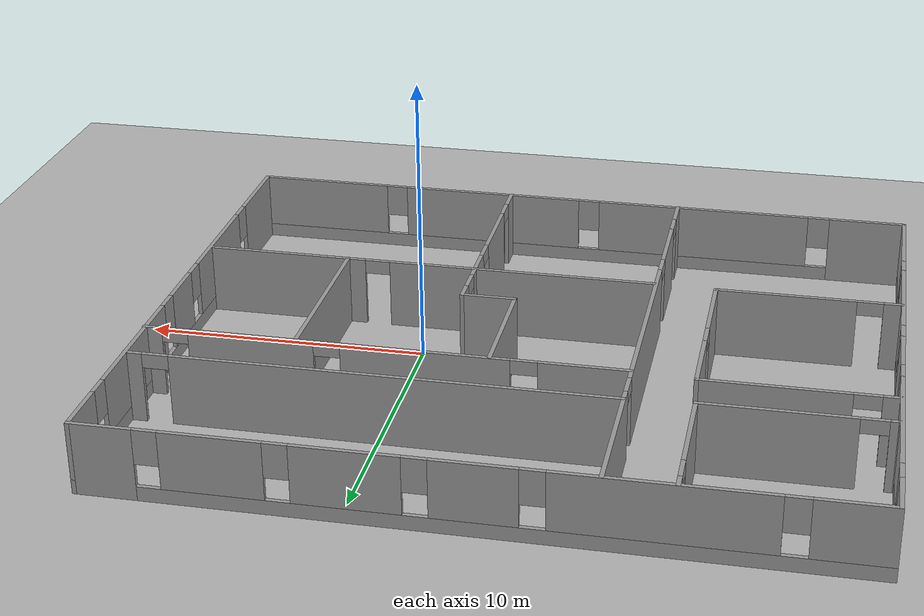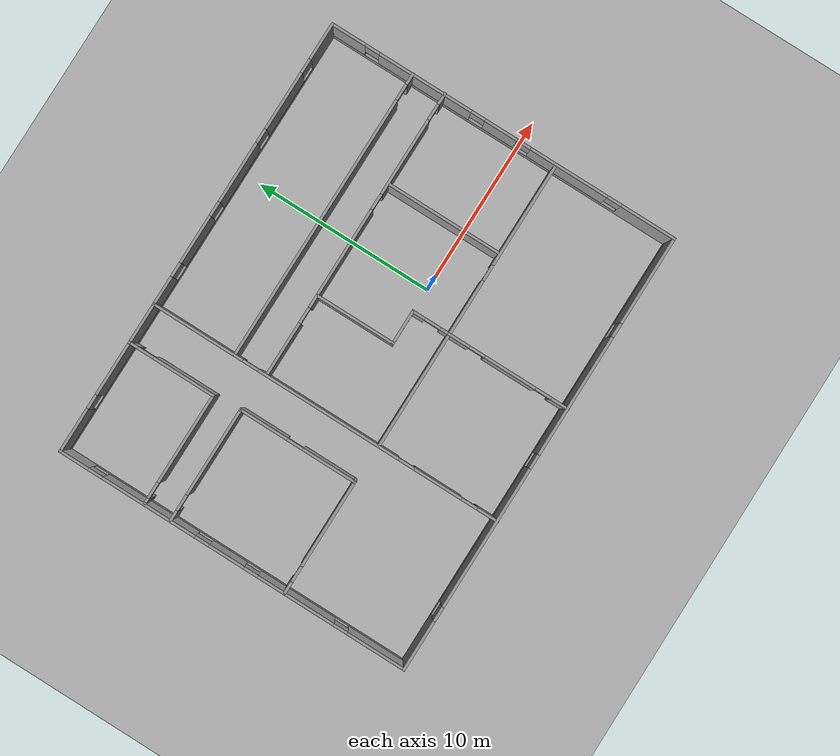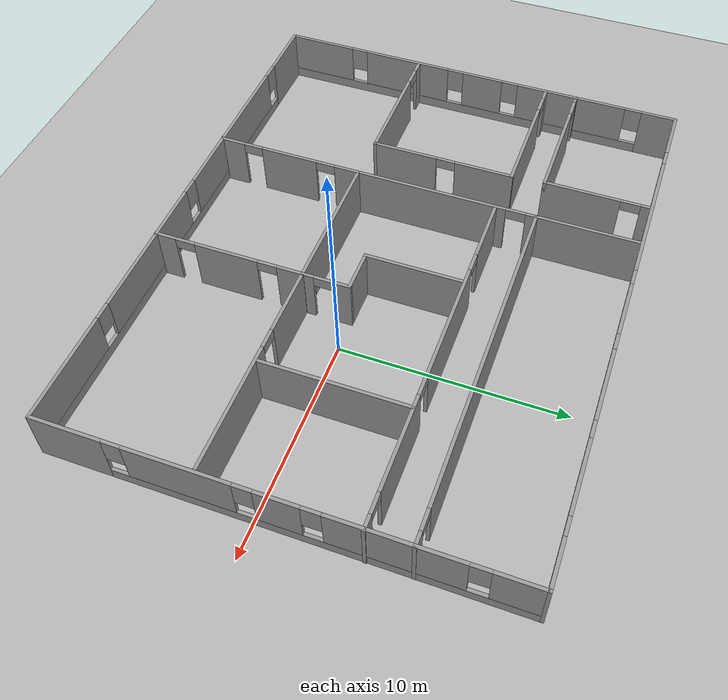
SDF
<sdf version="1.10">
 <world name="default">
  <model name="ground_plane">
   <static>true</static>
   <link name="link">
    <collision name="collision">
     <geometry><plane><normal>0 0 1</normal><size>100 100</size></plane></geometry>
     <surface><friction><ode><mu>100</mu><mu2>50</mu2></ode></friction></surface>
    </collision>
    <visual name="visual">
     <cast_shadows>false</cast_shadows>
     <geometry><plane><normal>0 0 1</normal><size>100 100</size></plane></geometry>
     <material>
      <ambient>0.300000012 0.300000012 0.300000012 1</ambient>
      <diffuse>0.699999988 0.699999988 0.699999988 1</diffuse>
      <specular>0.00999999978 0.00999999978 0.00999999978 1</specular>
     </material>
    </visual>
    <inertial>
     <mass>1</mass>
     <inertia><ixx>1</ixx><ixy>0</ixy><ixz>0</ixz><iyy>1</iyy><iyz>0</iyz><izz>1</izz></inertia>
    </inertial>
   </link>
  </model>
  <model name="RoomWorld">
   <pose>-4 1 0 0 0 0</pose>
   <link name="Wall_12">
    <pose>-0.015924000000000001 -9.9163999999999994 0 0 0 0</pose>
    <visual name="Wall_12_Visual_0">
     <pose>-11.0832 0 1.25 0 0 0</pose>
     <geometry><box><size>2.83352 0.14999999999999999 2.5</size></box></geometry>
     <material>
      <script><uri>file://media/materials/scripts/gazebo.material</uri><name>Gazebo/Grey</name></script>
      <ambient>1 1 1 1</ambient>
     </material>
    </visual>
    <collision name="Wall_12_Collision_0">
     <geometry><box><size>2.83352 0.14999999999999999 2.5</size></box></geometry>
     <pose>-11.0832 0 1.25 0 0 0</pose>
    </collision>
    <visual name="Wall_12_Visual_1">
     <pose>1.41676 0 0.25 0 0 0</pose>
     <geometry><box><size>22.166499999999999 0.14999999999999999 0.5</size></box></geometry>
     <material>
      <script><uri>file://media/materials/scripts/gazebo.material</uri><name>Gazebo/Grey</name></script>
      <ambient>1 1 1 1</ambient>
     </material>
    </visual>
    <collision name="Wall_12_Collision_1">
     <geometry><box><size>22.166499999999999 0.14999999999999999 0.5</size></box></geometry>
     <pose>1.41676 0 0.25 0 0 0</pose>
    </collision>
    <visual name="Wall_12_Visual_2">
     <pose>-4.8832300000000002 0 1.5 0 0 0</pose>
     <geometry><box><size>7.9664999999999999 0.14999999999999999 2</size></box></geometry>
     <material>
      <script><uri>file://media/materials/scripts/gazebo.material</uri><name>Gazebo/Grey</name></script>
      <ambient>1 1 1 1</ambient>
     </material>
    </visual>
    <collision name="Wall_12_Collision_2">
     <geometry><box><size>7.9664999999999999 0.14999999999999999 2</size></box></geometry>
     <pose>-4.8832300000000002 0 1.5 0 0 0</pose>
    </collision>
    <visual name="Wall_12_Visual_3">
     <pose>3.3050099999999998 0 1.5 0 0 0</pose>
     <geometry><box><size>6.8099699999999999 0.14999999999999999 2</size></box></geometry>
     <material>
      <script><uri>file://media/materials/scripts/gazebo.material</uri><name>Gazebo/Grey</name></script>
      <ambient>1 1 1 1</ambient>
     </material>
    </visual>
    <collision name="Wall_12_Collision_3">
     <geometry><box><size>6.8099699999999999 0.14999999999999999 2</size></box></geometry>
     <pose>3.3050099999999998 0 1.5 0 0 0</pose>
    </collision>
    <visual name="Wall_12_Visual_4">
     <pose>10.005000000000001 0 1.5 0 0 0</pose>
     <geometry><box><size>4.9900099999999998 0.14999999999999999 2</size></box></geometry>
     <material>
      <script><uri>file://media/materials/scripts/gazebo.material</uri><name>Gazebo/Grey</name></script>
      <ambient>1 1 1 1</ambient>
     </material>
    </visual>
    <collision name="Wall_12_Collision_4">
     <geometry><box><size>4.9900099999999998 0.14999999999999999 2</size></box></geometry>
     <pose>10.005000000000001 0 1.5 0 0 0</pose>
    </collision>
    <visual name="Wall_12_Visual_5">
     <pose>-9.2664799999999996 0 1.8999999999999999 0 0 0</pose>
     <geometry><box><size>0.80000000000000004 0.14999999999999999 1.2</size></box></geometry>
     <material>
      <script><uri>file://media/materials/scripts/gazebo.material</uri><name>Gazebo/Grey</name></script>
      <ambient>1 1 1 1</ambient>
     </material>
    </visual>
    <collision name="Wall_12_Collision_5">
     <geometry><box><size>0.80000000000000004 0.14999999999999999 1.2</size></box></geometry>
     <pose>-9.2664799999999996 0 1.8999999999999999 0 0 0</pose>
    </collision>
    <visual name="Wall_12_Visual_6">
     <pose>-0.49997799999999998 0 1.8999999999999999 0 0 0</pose>
     <geometry><box><size>0.80000000000000004 0.14999999999999999 1.2</size></box></geometry>
     <material>
      <script><uri>file://media/materials/scripts/gazebo.material</uri><name>Gazebo/Grey</name></script>
      <ambient>1 1 1 1</ambient>
     </material>
    </visual>
    <collision name="Wall_12_Collision_6">
     <geometry><box><size>0.80000000000000004 0.14999999999999999 1.2</size></box></geometry>
     <pose>-0.49997799999999998 0 1.8999999999999999 0 0 0</pose>
    </collision>
    <visual name="Wall_12_Visual_7">
     <pose>7.1099899999999998 0 1.8999999999999999 0 0 0</pose>
     <geometry><box><size>0.80000000000000004 0.14999999999999999 1.2</size></box></geometry>
     <material>
      <script><uri>file://media/materials/scripts/gazebo.material</uri><name>Gazebo/Grey</name></script>
      <ambient>1 1 1 1</ambient>
     </material>
    </visual>
    <collision name="Wall_12_Collision_7">
     <geometry><box><size>0.80000000000000004 0.14999999999999999 1.2</size></box></geometry>
     <pose>7.1099899999999998 0 1.8999999999999999 0 0 0</pose>
    </collision>
    <velocity_decay><linear>0</linear><angular>0</angular></velocity_decay>
    <inertial>
     <mass>1</mass>
     <inertia><ixx>1</ixx><ixy>0</ixy><ixz>0</ixz><iyy>1</iyy><iyz>0</iyz><izz>1</izz></inertia>
    </inertial>
   </link>
   <link name="Wall_13">
    <pose>12.4091 0.008604000000000056 0 0 0 1.5708000000000011</pose>
    <visual name="Wall_13_Visual_0">
     <pose>-8.4323200000000007 0 1.25 0 0 0</pose>
     <geometry><box><size>3.1353599999999999 0.14999999999999999 2.5</size></box></geometry>
     <material>
      <script><uri>file://media/materials/scripts/gazebo.material</uri><name>Gazebo/Grey</name></script>
      <ambient>1 1 1 1</ambient>
     </material>
    </visual>
    <collision name="Wall_13_Collision_0">
     <geometry><box><size>3.1353599999999999 0.14999999999999999 2.5</size></box></geometry>
     <pose>-8.4323200000000007 0 1.25 0 0 0</pose>
    </collision>
    <visual name="Wall_13_Visual_1">
     <pose>1.56768 0 0.25 0 0 0</pose>
     <geometry><box><size>16.864599999999999 0.14999999999999999 0.5</size></box></geometry>
     <material>
      <script><uri>file://media/materials/scripts/gazebo.material</uri><name>Gazebo/Grey</name></script>
      <ambient>1 1 1 1</ambient>
     </material>
    </visual>
    <collision name="Wall_13_Collision_1">
     <geometry><box><size>16.864599999999999 0.14999999999999999 0.5</size></box></geometry>
     <pose>1.56768 0 0.25 0 0 0</pose>
    </collision>
    <visual name="Wall_13_Visual_2">
     <pose>-3.8393199999999998 0 1.5 0 0 0</pose>
     <geometry><box><size>4.4506500000000004 0.14999999999999999 2</size></box></geometry>
     <material>
      <script><uri>file://media/materials/scripts/gazebo.material</uri><name>Gazebo/Grey</name></script>
      <ambient>1 1 1 1</ambient>
     </material>
    </visual>
    <collision name="Wall_13_Collision_2">
     <geometry><box><size>4.4506500000000004 0.14999999999999999 2</size></box></geometry>
     <pose>-3.8393199999999998 0 1.5 0 0 0</pose>
    </collision>
    <visual name="Wall_13_Visual_3">
     <pose>0.104448 0 1.5 0 0 0</pose>
     <geometry><box><size>1.8368899999999999 0.14999999999999999 2</size></box></geometry>
     <material>
      <script><uri>file://media/materials/scripts/gazebo.material</uri><name>Gazebo/Grey</name></script>
      <ambient>1 1 1 1</ambient>
     </material>
    </visual>
    <collision name="Wall_13_Collision_3">
     <geometry><box><size>1.8368899999999999 0.14999999999999999 2</size></box></geometry>
     <pose>0.104448 0 1.5 0 0 0</pose>
    </collision>
    <visual name="Wall_13_Visual_4">
     <pose>4.4992599999999996 0 1.5 0 0 0</pose>
     <geometry><box><size>5.3527399999999998 0.14999999999999999 2</size></box></geometry>
     <material>
      <script><uri>file://media/materials/scripts/gazebo.material</uri><name>Gazebo/Grey</name></script>
      <ambient>1 1 1 1</ambient>
     </material>
    </visual>
    <collision name="Wall_13_Collision_4">
     <geometry><box><size>5.3527399999999998 0.14999999999999999 2</size></box></geometry>
     <pose>4.4992599999999996 0 1.5 0 0 0</pose>
    </collision>
    <visual name="Wall_13_Visual_5">
     <pose>8.9878199999999993 0 1.5 0 0 0</pose>
     <geometry><box><size>2.0243699999999998 0.14999999999999999 2</size></box></geometry>
     <material>
      <script><uri>file://media/materials/scripts/gazebo.material</uri><name>Gazebo/Grey</name></script>
      <ambient>1 1 1 1</ambient>
     </material>
    </visual>
    <collision name="Wall_13_Collision_5">
     <geometry><box><size>2.0243699999999998 0.14999999999999999 2</size></box></geometry>
     <pose>8.9878199999999993 0 1.5 0 0 0</pose>
    </collision>
    <visual name="Wall_13_Visual_6">
     <pose>-6.4646400000000002 0 1.8999999999999999 0 0 0</pose>
     <geometry><box><size>0.80000000000000004 0.14999999999999999 1.2</size></box></geometry>
     <material>
      <script><uri>file://media/materials/scripts/gazebo.material</uri><name>Gazebo/Grey</name></script>
      <ambient>1 1 1 1</ambient>
     </material>
    </visual>
    <collision name="Wall_13_Collision_6">
     <geometry><box><size>0.80000000000000004 0.14999999999999999 1.2</size></box></geometry>
     <pose>-6.4646400000000002 0 1.8999999999999999 0 0 0</pose>
    </collision>
    <visual name="Wall_13_Visual_7">
     <pose>-1.214 0 1.8999999999999999 0 0 0</pose>
     <geometry><box><size>0.80000000000000004 0.14999999999999999 1.2</size></box></geometry>
     <material>
      <script><uri>file://media/materials/scripts/gazebo.material</uri><name>Gazebo/Grey</name></script>
      <ambient>1 1 1 1</ambient>
     </material>
    </visual>
    <collision name="Wall_13_Collision_7">
     <geometry><box><size>0.80000000000000004 0.14999999999999999 1.2</size></box></geometry>
     <pose>-1.214 0 1.8999999999999999 0 0 0</pose>
    </collision>
    <visual name="Wall_13_Visual_8">
     <pose>1.42289 0 1.8999999999999999 0 0 0</pose>
     <geometry><box><size>0.80000000000000004 0.14999999999999999 1.2</size></box></geometry>
     <material>
      <script><uri>file://media/materials/scripts/gazebo.material</uri><name>Gazebo/Grey</name></script>
      <ambient>1 1 1 1</ambient>
     </material>
    </visual>
    <collision name="Wall_13_Collision_8">
     <geometry><box><size>0.80000000000000004 0.14999999999999999 1.2</size></box></geometry>
     <pose>1.42289 0 1.8999999999999999 0 0 0</pose>
    </collision>
    <visual name="Wall_13_Visual_9">
     <pose>7.5756300000000003 0 1.8999999999999999 0 0 0</pose>
     <geometry><box><size>0.80000000000000004 0.14999999999999999 1.2</size></box></geometry>
     <material>
      <script><uri>file://media/materials/scripts/gazebo.material</uri><name>Gazebo/Grey</name></script>
      <ambient>1 1 1 1</ambient>
     </material>
    </visual>
    <collision name="Wall_13_Collision_9">
     <geometry><box><size>0.80000000000000004 0.14999999999999999 1.2</size></box></geometry>
     <pose>7.5756300000000003 0 1.8999999999999999 0 0 0</pose>
    </collision>
    <velocity_decay><linear>0</linear><angular>0</angular></velocity_decay>
    <inertial>
     <mass>1</mass>
     <inertia><ixx>1</ixx><ixy>0</ixy><ixz>0</ixz><iyy>1</iyy><iyz>0</iyz><izz>1</izz></inertia>
    </inertial>
   </link>
   <link name="Wall_14">
    <pose>-0.015924000000000049 9.9336000000000002 0 0 0 3.1415899999999999</pose>
    <visual name="Wall_14_Visual_0">
     <pose>-11.4391 0 1.25 0 0 0</pose>
     <geometry><box><size>2.12181 0.14999999999999999 2.5</size></box></geometry>
     <material>
      <script><uri>file://media/materials/scripts/gazebo.material</uri><name>Gazebo/Grey</name></script>
      <ambient>1 1 1 1</ambient>
     </material>
    </visual>
    <collision name="Wall_14_Collision_0">
     <geometry><box><size>2.12181 0.14999999999999999 2.5</size></box></geometry>
     <pose>-11.4391 0 1.25 0 0 0</pose>
    </collision>
    <visual name="Wall_14_Visual_1">
     <pose>1.06091 0 0.25 0 0 0</pose>
     <geometry><box><size>22.8782 0.14999999999999999 0.5</size></box></geometry>
     <material>
      <script><uri>file://media/materials/scripts/gazebo.material</uri><name>Gazebo/Grey</name></script>
      <ambient>1 1 1 1</ambient>
     </material>
    </visual>
    <collision name="Wall_14_Collision_1">
     <geometry><box><size>22.8782 0.14999999999999999 0.5</size></box></geometry>
     <pose>1.06091 0 0.25 0 0 0</pose>
    </collision>
    <visual name="Wall_14_Visual_2">
     <pose>-7.9311299999999996 0 1.5 0 0 0</pose>
     <geometry><box><size>3.2941199999999999 0.14999999999999999 2</size></box></geometry>
     <material>
      <script><uri>file://media/materials/scripts/gazebo.material</uri><name>Gazebo/Grey</name></script>
      <ambient>1 1 1 1</ambient>
     </material>
    </visual>
    <collision name="Wall_14_Collision_2">
     <geometry><box><size>3.2941199999999999 0.14999999999999999 2</size></box></geometry>
     <pose>-7.9311299999999996 0 1.5 0 0 0</pose>
    </collision>
    <visual name="Wall_14_Visual_3">
     <pose>-3.7560500000000001 0 1.5 0 0 0</pose>
     <geometry><box><size>3.4560300000000002 0.14999999999999999 2</size></box></geometry>
     <material>
      <script><uri>file://media/materials/scripts/gazebo.material</uri><name>Gazebo/Grey</name></script>
      <ambient>1 1 1 1</ambient>
     </material>
    </visual>
    <collision name="Wall_14_Collision_3">
     <geometry><box><size>3.4560300000000002 0.14999999999999999 2</size></box></geometry>
     <pose>-3.7560500000000001 0 1.5 0 0 0</pose>
    </collision>
    <visual name="Wall_14_Visual_4">
     <pose>0.141454 0 1.5 0 0 0</pose>
     <geometry><box><size>2.7389800000000002 0.14999999999999999 2</size></box></geometry>
     <material>
      <script><uri>file://media/materials/scripts/gazebo.material</uri><name>Gazebo/Grey</name></script>
      <ambient>1 1 1 1</ambient>
     </material>
    </visual>
    <collision name="Wall_14_Collision_4">
     <geometry><box><size>2.7389800000000002 0.14999999999999999 2</size></box></geometry>
     <pose>0.141454 0 1.5 0 0 0</pose>
    </collision>
    <visual name="Wall_14_Visual_5">
     <pose>5.7390600000000003 0 1.5 0 0 0</pose>
     <geometry><box><size>6.85623 0.14999999999999999 2</size></box></geometry>
     <material>
      <script><uri>file://media/materials/scripts/gazebo.material</uri><name>Gazebo/Grey</name></script>
      <ambient>1 1 1 1</ambient>
     </material>
    </visual>
    <collision name="Wall_14_Collision_5">
     <geometry><box><size>6.85623 0.14999999999999999 2</size></box></geometry>
     <pose>5.7390600000000003 0 1.5 0 0 0</pose>
    </collision>
    <visual name="Wall_14_Visual_6">
     <pose>11.233599999999999 0 1.5 0 0 0</pose>
     <geometry><box><size>2.5328200000000001 0.14999999999999999 2</size></box></geometry>
     <material>
      <script><uri>file://media/materials/scripts/gazebo.material</uri><name>Gazebo/Grey</name></script>
      <ambient>1 1 1 1</ambient>
     </material>
    </visual>
    <collision name="Wall_14_Collision_6">
     <geometry><box><size>2.5328200000000001 0.14999999999999999 2</size></box></geometry>
     <pose>11.233599999999999 0 1.5 0 0 0</pose>
    </collision>
    <visual name="Wall_14_Visual_7">
     <pose>-9.9781899999999997 0 1.8999999999999999 0 0 0</pose>
     <geometry><box><size>0.80000000000000004 0.14999999999999999 1.2</size></box></geometry>
     <material>
      <script><uri>file://media/materials/scripts/gazebo.material</uri><name>Gazebo/Grey</name></script>
      <ambient>1 1 1 1</ambient>
     </material>
    </visual>
    <collision name="Wall_14_Collision_7">
     <geometry><box><size>0.80000000000000004 0.14999999999999999 1.2</size></box></geometry>
     <pose>-9.9781899999999997 0 1.8999999999999999 0 0 0</pose>
    </collision>
    <visual name="Wall_14_Visual_8">
     <pose>-5.8840700000000004 0 1.8999999999999999 0 0 0</pose>
     <geometry><box><size>0.80000000000000004 0.14999999999999999 1.2</size></box></geometry>
     <material>
      <script><uri>file://media/materials/scripts/gazebo.material</uri><name>Gazebo/Grey</name></script>
      <ambient>1 1 1 1</ambient>
     </material>
    </visual>
    <collision name="Wall_14_Collision_8">
     <geometry><box><size>0.80000000000000004 0.14999999999999999 1.2</size></box></geometry>
     <pose>-5.8840700000000004 0 1.8999999999999999 0 0 0</pose>
    </collision>
    <visual name="Wall_14_Visual_9">
     <pose>-1.6280399999999999 0 1.8999999999999999 0 0 0</pose>
     <geometry><box><size>0.80000000000000004 0.14999999999999999 1.2</size></box></geometry>
     <material>
      <script><uri>file://media/materials/scripts/gazebo.material</uri><name>Gazebo/Grey</name></script>
      <ambient>1 1 1 1</ambient>
     </material>
    </visual>
    <collision name="Wall_14_Collision_9">
     <geometry><box><size>0.80000000000000004 0.14999999999999999 1.2</size></box></geometry>
     <pose>-1.6280399999999999 0 1.8999999999999999 0 0 0</pose>
    </collision>
    <visual name="Wall_14_Visual_10">
     <pose>1.9109400000000001 0 1.8999999999999999 0 0 0</pose>
     <geometry><box><size>0.80000000000000004 0.14999999999999999 1.2</size></box></geometry>
     <material>
      <script><uri>file://media/materials/scripts/gazebo.material</uri><name>Gazebo/Grey</name></script>
      <ambient>1 1 1 1</ambient>
     </material>
    </visual>
    <collision name="Wall_14_Collision_10">
     <geometry><box><size>0.80000000000000004 0.14999999999999999 1.2</size></box></geometry>
     <pose>1.9109400000000001 0 1.8999999999999999 0 0 0</pose>
    </collision>
    <visual name="Wall_14_Visual_11">
     <pose>9.5671800000000005 0 1.8999999999999999 0 0 0</pose>
     <geometry><box><size>0.80000000000000004 0.14999999999999999 1.2</size></box></geometry>
     <material>
      <script><uri>file://media/materials/scripts/gazebo.material</uri><name>Gazebo/Grey</name></script>
      <ambient>1 1 1 1</ambient>
     </material>
    </visual>
    <collision name="Wall_14_Collision_11">
     <geometry><box><size>0.80000000000000004 0.14999999999999999 1.2</size></box></geometry>
     <pose>9.5671800000000005 0 1.8999999999999999 0 0 0</pose>
    </collision>
    <velocity_decay><linear>0</linear><angular>0</angular></velocity_decay>
    <inertial>
     <mass>1</mass>
     <inertia><ixx>1</ixx><ixy>0</ixy><ixz>0</ixz><iyy>1</iyy><iyz>0</iyz><izz>1</izz></inertia>
    </inertial>
   </link>
   <link name="Wall_15">
    <pose>-12.440899999999999 0.008604000000000056 0 0 0 -1.5708000000000011</pose>
    <visual name="Wall_15_Visual_0">
     <pose>-9.1497299999999999 0 1.25 0 0 0</pose>
     <geometry><box><size>1.7005399999999999 0.14999999999999999 2.5</size></box></geometry>
     <material>
      <script><uri>file://media/materials/scripts/gazebo.material</uri><name>Gazebo/Grey</name></script>
      <ambient>1 1 1 1</ambient>
     </material>
    </visual>
    <collision name="Wall_15_Collision_0">
     <geometry><box><size>1.7005399999999999 0.14999999999999999 2.5</size></box></geometry>
     <pose>-9.1497299999999999 0 1.25 0 0 0</pose>
    </collision>
    <visual name="Wall_15_Visual_1">
     <pose>0.85026900000000005 0 0.25 0 0 0</pose>
     <geometry><box><size>18.299499999999998 0.14999999999999999 0.5</size></box></geometry>
     <material>
      <script><uri>file://media/materials/scripts/gazebo.material</uri><name>Gazebo/Grey</name></script>
      <ambient>1 1 1 1</ambient>
     </material>
    </visual>
    <collision name="Wall_15_Collision_1">
     <geometry><box><size>18.299499999999998 0.14999999999999999 0.5</size></box></geometry>
     <pose>0.85026900000000005 0 0.25 0 0 0</pose>
    </collision>
    <visual name="Wall_15_Visual_2">
     <pose>-4.8115300000000003 0 1.5 0 0 0</pose>
     <geometry><box><size>5.3758699999999999 0.14999999999999999 2</size></box></geometry>
     <material>
      <script><uri>file://media/materials/scripts/gazebo.material</uri><name>Gazebo/Grey</name></script>
      <ambient>1 1 1 1</ambient>
     </material>
    </visual>
    <collision name="Wall_15_Collision_2">
     <geometry><box><size>5.3758699999999999 0.14999999999999999 2</size></box></geometry>
     <pose>-4.8115300000000003 0 1.5 0 0 0</pose>
    </collision>
    <visual name="Wall_15_Visual_3">
     <pose>-0.31262299999999998 0 1.5 0 0 0</pose>
     <geometry><box><size>2.0219299999999998 0.14999999999999999 2</size></box></geometry>
     <material>
      <script><uri>file://media/materials/scripts/gazebo.material</uri><name>Gazebo/Grey</name></script>
      <ambient>1 1 1 1</ambient>
     </material>
    </visual>
    <collision name="Wall_15_Collision_3">
     <geometry><box><size>2.0219299999999998 0.14999999999999999 2</size></box></geometry>
     <pose>-0.31262299999999998 0 1.5 0 0 0</pose>
    </collision>
    <visual name="Wall_15_Visual_4">
     <pose>3.6774100000000001 0 1.5 0 0 0</pose>
     <geometry><box><size>4.3581300000000001 0.14999999999999999 2</size></box></geometry>
     <material>
      <script><uri>file://media/materials/scripts/gazebo.material</uri><name>Gazebo/Grey</name></script>
      <ambient>1 1 1 1</ambient>
     </material>
    </visual>
    <collision name="Wall_15_Collision_4">
     <geometry><box><size>4.3581300000000001 0.14999999999999999 2</size></box></geometry>
     <pose>3.6774100000000001 0 1.5 0 0 0</pose>
    </collision>
    <visual name="Wall_15_Visual_5">
     <pose>8.3282299999999996 0 1.5 0 0 0</pose>
     <geometry><box><size>3.3435299999999999 0.14999999999999999 2</size></box></geometry>
     <material>
      <script><uri>file://media/materials/scripts/gazebo.material</uri><name>Gazebo/Grey</name></script>
      <ambient>1 1 1 1</ambient>
     </material>
    </visual>
    <collision name="Wall_15_Collision_5">
     <geometry><box><size>3.3435299999999999 0.14999999999999999 2</size></box></geometry>
     <pose>8.3282299999999996 0 1.5 0 0 0</pose>
    </collision>
    <visual name="Wall_15_Visual_6">
     <pose>-7.8994600000000004 0 1.8999999999999999 0 0 0</pose>
     <geometry><box><size>0.80000000000000004 0.14999999999999999 1.2</size></box></geometry>
     <material>
      <script><uri>file://media/materials/scripts/gazebo.material</uri><name>Gazebo/Grey</name></script>
      <ambient>1 1 1 1</ambient>
     </material>
    </visual>
    <collision name="Wall_15_Collision_6">
     <geometry><box><size>0.80000000000000004 0.14999999999999999 1.2</size></box></geometry>
     <pose>-7.8994600000000004 0 1.8999999999999999 0 0 0</pose>
    </collision>
    <visual name="Wall_15_Visual_7">
     <pose>-1.72359 0 1.8999999999999999 0 0 0</pose>
     <geometry><box><size>0.80000000000000004 0.14999999999999999 1.2</size></box></geometry>
     <material>
      <script><uri>file://media/materials/scripts/gazebo.material</uri><name>Gazebo/Grey</name></script>
      <ambient>1 1 1 1</ambient>
     </material>
    </visual>
    <collision name="Wall_15_Collision_7">
     <geometry><box><size>0.80000000000000004 0.14999999999999999 1.2</size></box></geometry>
     <pose>-1.72359 0 1.8999999999999999 0 0 0</pose>
    </collision>
    <visual name="Wall_15_Visual_8">
     <pose>1.0983400000000001 0 1.8999999999999999 0 0 0</pose>
     <geometry><box><size>0.80000000000000004 0.14999999999999999 1.2</size></box></geometry>
     <material>
      <script><uri>file://media/materials/scripts/gazebo.material</uri><name>Gazebo/Grey</name></script>
      <ambient>1 1 1 1</ambient>
     </material>
    </visual>
    <collision name="Wall_15_Collision_8">
     <geometry><box><size>0.80000000000000004 0.14999999999999999 1.2</size></box></geometry>
     <pose>1.0983400000000001 0 1.8999999999999999 0 0 0</pose>
    </collision>
    <visual name="Wall_15_Visual_9">
     <pose>6.2564700000000002 0 1.8999999999999999 0 0 0</pose>
     <geometry><box><size>0.80000000000000004 0.14999999999999999 1.2</size></box></geometry>
     <material>
      <script><uri>file://media/materials/scripts/gazebo.material</uri><name>Gazebo/Grey</name></script>
      <ambient>1 1 1 1</ambient>
     </material>
    </visual>
    <collision name="Wall_15_Collision_9">
     <geometry><box><size>0.80000000000000004 0.14999999999999999 1.2</size></box></geometry>
     <pose>6.2564700000000002 0 1.8999999999999999 0 0 0</pose>
    </collision>
    <velocity_decay><linear>0</linear><angular>0</angular></velocity_decay>
    <inertial>
     <mass>1</mass>
     <inertia><ixx>1</ixx><ixy>0</ixy><ixz>0</ixz><iyy>1</iyy><iyz>0</iyz><izz>1</izz></inertia>
    </inertial>
   </link>
   <link name="Wall_17">
    <pose>-9.2054100000000005 3.5661100000000001 0 0 0 0</pose>
    <visual name="Wall_17_Visual_0">
     <pose>-2.9429599999999998 0 1.25 0 0 0</pose>
     <geometry><box><size>0.61408399999999996 0.14999999999999999 2.5</size></box></geometry>
     <material>
      <script><uri>file://media/materials/scripts/gazebo.material</uri><name>Gazebo/Grey</name></script>
      <ambient>1 1 1 1</ambient>
     </material>
    </visual>
    <collision name="Wall_17_Collision_0">
     <geometry><box><size>0.61408399999999996 0.14999999999999999 2.5</size></box></geometry>
     <pose>-2.9429599999999998 0 1.25 0 0 0</pose>
    </collision>
    <visual name="Wall_17_Visual_1">
     <pose>0.75704199999999999 0 1.25 0 0 0</pose>
     <geometry><box><size>4.9859200000000001 0.14999999999999999 2.5</size></box></geometry>
     <material>
      <script><uri>file://media/materials/scripts/gazebo.material</uri><name>Gazebo/Grey</name></script>
      <ambient>1 1 1 1</ambient>
     </material>
    </visual>
    <collision name="Wall_17_Collision_1">
     <geometry><box><size>4.9859200000000001 0.14999999999999999 2.5</size></box></geometry>
     <pose>0.75704199999999999 0 1.25 0 0 0</pose>
    </collision>
    <visual name="Wall_17_Visual_2">
     <pose>-2.1859199999999999 0 2.25 0 0 0</pose>
     <geometry><box><size>0.90000000000000002 0.14999999999999999 0.5</size></box></geometry>
     <material>
      <script><uri>file://media/materials/scripts/gazebo.material</uri><name>Gazebo/Grey</name></script>
      <ambient>1 1 1 1</ambient>
     </material>
    </visual>
    <collision name="Wall_17_Collision_2">
     <geometry><box><size>0.90000000000000002 0.14999999999999999 0.5</size></box></geometry>
     <pose>-2.1859199999999999 0 2.25 0 0 0</pose>
    </collision>
    <velocity_decay><linear>0</linear><angular>0</angular></velocity_decay>
    <inertial>
     <mass>1</mass>
     <inertia><ixx>1</ixx><ixy>0</ixy><ixz>0</ixz><iyy>1</iyy><iyz>0</iyz><izz>1</izz></inertia>
    </inertial>
   </link>
   <link name="Wall_18">
    <pose>-6.0304099999999998 0.26611200000000013 0 0 0 -1.5708000000000011</pose>
    <visual name="Wall_18_Visual_0">
     <pose>-1.9943500000000001 0 1.25 0 0 0</pose>
     <geometry><box><size>2.7612999999999999 0.14999999999999999 2.5</size></box></geometry>
     <material>
      <script><uri>file://media/materials/scripts/gazebo.material</uri><name>Gazebo/Grey</name></script>
      <ambient>1 1 1 1</ambient>
     </material>
    </visual>
    <collision name="Wall_18_Collision_0">
     <geometry><box><size>2.7612999999999999 0.14999999999999999 2.5</size></box></geometry>
     <pose>-1.9943500000000001 0 1.25 0 0 0</pose>
    </collision>
    <visual name="Wall_18_Visual_1">
     <pose>1.8306500000000001 0 1.25 0 0 0</pose>
     <geometry><box><size>3.0886999999999998 0.14999999999999999 2.5</size></box></geometry>
     <material>
      <script><uri>file://media/materials/scripts/gazebo.material</uri><name>Gazebo/Grey</name></script>
      <ambient>1 1 1 1</ambient>
     </material>
    </visual>
    <collision name="Wall_18_Collision_1">
     <geometry><box><size>3.0886999999999998 0.14999999999999999 2.5</size></box></geometry>
     <pose>1.8306500000000001 0 1.25 0 0 0</pose>
    </collision>
    <visual name="Wall_18_Visual_2">
     <pose>-0.16370299999999999 0 2.25 0 0 0</pose>
     <geometry><box><size>0.90000000000000002 0.14999999999999999 0.5</size></box></geometry>
     <material>
      <script><uri>file://media/materials/scripts/gazebo.material</uri><name>Gazebo/Grey</name></script>
      <ambient>1 1 1 1</ambient>
     </material>
    </visual>
    <collision name="Wall_18_Collision_2">
     <geometry><box><size>0.90000000000000002 0.14999999999999999 0.5</size></box></geometry>
     <pose>-0.16370299999999999 0 2.25 0 0 0</pose>
    </collision>
    <velocity_decay><linear>0</linear><angular>0</angular></velocity_decay>
    <inertial>
     <mass>1</mass>
     <inertia><ixx>1</ixx><ixy>0</ixy><ixz>0</ixz><iyy>1</iyy><iyz>0</iyz><izz>1</izz></inertia>
    </inertial>
   </link>
   <link name="Wall_19">
    <pose>-9.2054100000000005 -3.03389 0 0 0 3.1415899999999999</pose>
    <visual name="Wall_19_Visual_0">
     <pose>-0.78721200000000002 0 1.25 0 0 0</pose>
     <geometry><box><size>4.9255800000000001 0.14999999999999999 2.5</size></box></geometry>
     <material>
      <script><uri>file://media/materials/scripts/gazebo.material</uri><name>Gazebo/Grey</name></script>
      <ambient>1 1 1 1</ambient>
     </material>
    </visual>
    <collision name="Wall_19_Collision_0">
     <geometry><box><size>4.9255800000000001 0.14999999999999999 2.5</size></box></geometry>
     <pose>-0.78721200000000002 0 1.25 0 0 0</pose>
    </collision>
    <visual name="Wall_19_Visual_1">
     <pose>2.9127900000000002 0 1.25 0 0 0</pose>
     <geometry><box><size>0.67442500000000005 0.14999999999999999 2.5</size></box></geometry>
     <material>
      <script><uri>file://media/materials/scripts/gazebo.material</uri><name>Gazebo/Grey</name></script>
      <ambient>1 1 1 1</ambient>
     </material>
    </visual>
    <collision name="Wall_19_Collision_1">
     <geometry><box><size>0.67442500000000005 0.14999999999999999 2.5</size></box></geometry>
     <pose>2.9127900000000002 0 1.25 0 0 0</pose>
    </collision>
    <visual name="Wall_19_Visual_2">
     <pose>2.1255700000000002 0 2.25 0 0 0</pose>
     <geometry><box><size>0.90000000000000002 0.14999999999999999 0.5</size></box></geometry>
     <material>
      <script><uri>file://media/materials/scripts/gazebo.material</uri><name>Gazebo/Grey</name></script>
      <ambient>1 1 1 1</ambient>
     </material>
    </visual>
    <collision name="Wall_19_Collision_2">
     <geometry><box><size>0.90000000000000002 0.14999999999999999 0.5</size></box></geometry>
     <pose>2.1255700000000002 0 2.25 0 0 0</pose>
    </collision>
    <velocity_decay><linear>0</linear><angular>0</angular></velocity_decay>
    <inertial>
     <mass>1</mass>
     <inertia><ixx>1</ixx><ixy>0</ixy><ixz>0</ixz><iyy>1</iyy><iyz>0</iyz><izz>1</izz></inertia>
    </inertial>
   </link>
   <link name="Wall_21">
    <pose>-6.1582699999999999 7.5020300000000013 0 0 0 -1.5708000000000011</pose>
    <visual name="Wall_21_Visual_0">
     <pose>-2.2230799999999999 0 1.25 0 0 0</pose>
     <geometry><box><size>0.55383199999999999 0.14999999999999999 2.5</size></box></geometry>
     <material>
      <script><uri>file://media/materials/scripts/gazebo.material</uri><name>Gazebo/Grey</name></script>
      <ambient>1 1 1 1</ambient>
     </material>
    </visual>
    <collision name="Wall_21_Collision_0">
     <geometry><box><size>0.55383199999999999 0.14999999999999999 2.5</size></box></geometry>
     <pose>-2.2230799999999999 0 1.25 0 0 0</pose>
    </collision>
    <visual name="Wall_21_Visual_1">
     <pose>0.72691600000000001 0 1.25 0 0 0</pose>
     <geometry><box><size>3.54617 0.14999999999999999 2.5</size></box></geometry>
     <material>
      <script><uri>file://media/materials/scripts/gazebo.material</uri><name>Gazebo/Grey</name></script>
      <ambient>1 1 1 1</ambient>
     </material>
    </visual>
    <collision name="Wall_21_Collision_1">
     <geometry><box><size>3.54617 0.14999999999999999 2.5</size></box></geometry>
     <pose>0.72691600000000001 0 1.25 0 0 0</pose>
    </collision>
    <visual name="Wall_21_Visual_2">
     <pose>-1.49617 0 2.25 0 0 0</pose>
     <geometry><box><size>0.90000000000000002 0.14999999999999999 0.5</size></box></geometry>
     <material>
      <script><uri>file://media/materials/scripts/gazebo.material</uri><name>Gazebo/Grey</name></script>
      <ambient>1 1 1 1</ambient>
     </material>
    </visual>
    <collision name="Wall_21_Collision_2">
     <geometry><box><size>0.90000000000000002 0.14999999999999999 0.5</size></box></geometry>
     <pose>-1.49617 0 2.25 0 0 0</pose>
    </collision>
    <velocity_decay><linear>0</linear><angular>0</angular></velocity_decay>
    <inertial>
     <mass>1</mass>
     <inertia><ixx>1</ixx><ixy>0</ixy><ixz>0</ixz><iyy>1</iyy><iyz>0</iyz><izz>1</izz></inertia>
    </inertial>
   </link>
   <link name="Wall_22">
    <pose>-9.2082800000000002 5.0770299999999997 0 0 0 3.1415899999999999</pose>
    <visual name="Wall_22_Visual_0">
     <pose>-0.57529399999999997 0 1.25 0 0 0</pose>
     <geometry><box><size>5.0994099999999998 0.14999999999999999 2.5</size></box></geometry>
     <material>
      <script><uri>file://media/materials/scripts/gazebo.material</uri><name>Gazebo/Grey</name></script>
      <ambient>1 1 1 1</ambient>
     </material>
    </visual>
    <collision name="Wall_22_Collision_0">
     <geometry><box><size>5.0994099999999998 0.14999999999999999 2.5</size></box></geometry>
     <pose>-0.57529399999999997 0 1.25 0 0 0</pose>
    </collision>
    <visual name="Wall_22_Visual_1">
     <pose>2.9997099999999999 0 1.25 0 0 0</pose>
     <geometry><box><size>0.25058799999999998 0.14999999999999999 2.5</size></box></geometry>
     <material>
      <script><uri>file://media/materials/scripts/gazebo.material</uri><name>Gazebo/Grey</name></script>
      <ambient>1 1 1 1</ambient>
     </material>
    </visual>
    <collision name="Wall_22_Collision_1">
     <geometry><box><size>0.25058799999999998 0.14999999999999999 2.5</size></box></geometry>
     <pose>2.9997099999999999 0 1.25 0 0 0</pose>
    </collision>
    <visual name="Wall_22_Visual_2">
     <pose>2.42441 0 2.25 0 0 0</pose>
     <geometry><box><size>0.90000000000000002 0.14999999999999999 0.5</size></box></geometry>
     <material>
      <script><uri>file://media/materials/scripts/gazebo.material</uri><name>Gazebo/Grey</name></script>
      <ambient>1 1 1 1</ambient>
     </material>
    </visual>
    <collision name="Wall_22_Collision_2">
     <geometry><box><size>0.90000000000000002 0.14999999999999999 0.5</size></box></geometry>
     <pose>2.42441 0 2.25 0 0 0</pose>
    </collision>
    <velocity_decay><linear>0</linear><angular>0</angular></velocity_decay>
    <inertial>
     <mass>1</mass>
     <inertia><ixx>1</ixx><ixy>0</ixy><ixz>0</ixz><iyy>1</iyy><iyz>0</iyz><izz>1</izz></inertia>
    </inertial>
   </link>
   <link name="Wall_24">
    <collision name="Wall_24_Collision">
     <geometry><box><size>0.25 0.14999999999999999 2.5</size></box></geometry>
     <pose>0 0 1.25 0 0 0</pose>
    </collision>
    <visual name="Wall_24_Visual">
     <pose>0 0 1.25 0 0 0</pose>
     <geometry><box><size>0.25 0.14999999999999999 2.5</size></box></geometry>
     <material>
      <script><uri>file://media/materials/scripts/gazebo.material</uri><name>Gazebo/Grey</name></script>
      <ambient>1 1 1 1</ambient>
     </material>
    </visual>
    <pose>-12.308299999999999 5.0770299999999997 0 0 0 3.1415899999999999</pose>
    <velocity_decay><linear>0</linear><angular>0</angular></velocity_decay>
    <inertial>
     <mass>1</mass>
     <inertia><ixx>1</ixx><ixy>0</ixy><ixz>0</ixz><iyy>1</iyy><iyz>0</iyz><izz>1</izz></inertia>
    </inertial>
   </link>
   <link name="Wall_28">
    <pose>-3.9378799999999998 -0.0069360000000000532 0 0 0 -1.5708000000000011</pose>
    <visual name="Wall_28_Visual_0">
     <pose>-7.3943899999999996 0 1.25 0 0 0</pose>
     <geometry><box><size>5.21122 0.14999999999999999 2.5</size></box></geometry>
     <material>
      <script><uri>file://media/materials/scripts/gazebo.material</uri><name>Gazebo/Grey</name></script>
      <ambient>1 1 1 1</ambient>
     </material>
    </visual>
    <collision name="Wall_28_Collision_0">
     <geometry><box><size>5.21122 0.14999999999999999 2.5</size></box></geometry>
     <pose>-7.3943899999999996 0 1.25 0 0 0</pose>
    </collision>
    <visual name="Wall_28_Visual_1">
     <pose>0.17671200000000001 0 1.25 0 0 0</pose>
     <geometry><box><size>8.1309900000000006 0.14999999999999999 2.5</size></box></geometry>
     <material>
      <script><uri>file://media/materials/scripts/gazebo.material</uri><name>Gazebo/Grey</name></script>
      <ambient>1 1 1 1</ambient>
     </material>
    </visual>
    <collision name="Wall_28_Collision_1">
     <geometry><box><size>8.1309900000000006 0.14999999999999999 2.5</size></box></geometry>
     <pose>0.17671200000000001 0 1.25 0 0 0</pose>
    </collision>
    <visual name="Wall_28_Visual_2">
     <pose>6.5024300000000004 0 1.25 0 0 0</pose>
     <geometry><box><size>2.72044 0.14999999999999999 2.5</size></box></geometry>
     <material>
      <script><uri>file://media/materials/scripts/gazebo.material</uri><name>Gazebo/Grey</name></script>
      <ambient>1 1 1 1</ambient>
     </material>
    </visual>
    <collision name="Wall_28_Collision_2">
     <geometry><box><size>2.72044 0.14999999999999999 2.5</size></box></geometry>
     <pose>6.5024300000000004 0 1.25 0 0 0</pose>
    </collision>
    <visual name="Wall_28_Visual_3">
     <pose>9.3813300000000002 0 1.25 0 0 0</pose>
     <geometry><box><size>1.2373499999999999 0.14999999999999999 2.5</size></box></geometry>
     <material>
      <script><uri>file://media/materials/scripts/gazebo.material</uri><name>Gazebo/Grey</name></script>
      <ambient>1 1 1 1</ambient>
     </material>
    </visual>
    <collision name="Wall_28_Collision_3">
     <geometry><box><size>1.2373499999999999 0.14999999999999999 2.5</size></box></geometry>
     <pose>9.3813300000000002 0 1.25 0 0 0</pose>
    </collision>
    <visual name="Wall_28_Visual_4">
     <pose>-4.3387799999999999 0 2.25 0 0 0</pose>
     <geometry><box><size>0.90000000000000002 0.14999999999999999 0.5</size></box></geometry>
     <material>
      <script><uri>file://media/materials/scripts/gazebo.material</uri><name>Gazebo/Grey</name></script>
      <ambient>1 1 1 1</ambient>
     </material>
    </visual>
    <collision name="Wall_28_Collision_4">
     <geometry><box><size>0.90000000000000002 0.14999999999999999 0.5</size></box></geometry>
     <pose>-4.3387799999999999 0 2.25 0 0 0</pose>
    </collision>
    <visual name="Wall_28_Visual_5">
     <pose>4.6922100000000002 0 2.25 0 0 0</pose>
     <geometry><box><size>0.90000000000000002 0.14999999999999999 0.5</size></box></geometry>
     <material>
      <script><uri>file://media/materials/scripts/gazebo.material</uri><name>Gazebo/Grey</name></script>
      <ambient>1 1 1 1</ambient>
     </material>
    </visual>
    <collision name="Wall_28_Collision_5">
     <geometry><box><size>0.90000000000000002 0.14999999999999999 0.5</size></box></geometry>
     <pose>4.6922100000000002 0 2.25 0 0 0</pose>
    </collision>
    <visual name="Wall_28_Visual_6">
     <pose>8.3126499999999997 0 2.25 0 0 0</pose>
     <geometry><box><size>0.90000000000000002 0.14999999999999999 0.5</size></box></geometry>
     <material>
      <script><uri>file://media/materials/scripts/gazebo.material</uri><name>Gazebo/Grey</name></script>
      <ambient>1 1 1 1</ambient>
     </material>
    </visual>
    <collision name="Wall_28_Collision_6">
     <geometry><box><size>0.90000000000000002 0.14999999999999999 0.5</size></box></geometry>
     <pose>8.3126499999999997 0 2.25 0 0 0</pose>
    </collision>
    <velocity_decay><linear>0</linear><angular>0</angular></velocity_decay>
    <inertial>
     <mass>1</mass>
     <inertia><ixx>1</ixx><ixy>0</ixy><ixz>0</ixz><iyy>1</iyy><iyz>0</iyz><izz>1</izz></inertia>
    </inertial>
   </link>
   <link name="Wall_30">
    <pose>4.2458099999999996 5.2570699999999997 0 0 0 0</pose>
    <visual name="Wall_30_Visual_0">
     <pose>-0.78428600000000004 0 1.25 0 0 0</pose>
     <geometry><box><size>14.9314 0.14999999999999999 2.5</size></box></geometry>
     <material>
      <script><uri>file://media/materials/scripts/gazebo.material</uri><name>Gazebo/Grey</name></script>
      <ambient>1 1 1 1</ambient>
     </material>
    </visual>
    <collision name="Wall_30_Collision_0">
     <geometry><box><size>14.9314 0.14999999999999999 2.5</size></box></geometry>
     <pose>-0.78428600000000004 0 1.25 0 0 0</pose>
    </collision>
    <visual name="Wall_30_Visual_1">
     <pose>7.9157099999999998 0 1.25 0 0 0</pose>
     <geometry><box><size>0.66857100000000003 0.14999999999999999 2.5</size></box></geometry>
     <material>
      <script><uri>file://media/materials/scripts/gazebo.material</uri><name>Gazebo/Grey</name></script>
      <ambient>1 1 1 1</ambient>
     </material>
    </visual>
    <collision name="Wall_30_Collision_1">
     <geometry><box><size>0.66857100000000003 0.14999999999999999 2.5</size></box></geometry>
     <pose>7.9157099999999998 0 1.25 0 0 0</pose>
    </collision>
    <visual name="Wall_30_Visual_2">
     <pose>7.1314299999999999 0 2.25 0 0 0</pose>
     <geometry><box><size>0.90000000000000002 0.14999999999999999 0.5</size></box></geometry>
     <material>
      <script><uri>file://media/materials/scripts/gazebo.material</uri><name>Gazebo/Grey</name></script>
      <ambient>1 1 1 1</ambient>
     </material>
    </visual>
    <collision name="Wall_30_Collision_2">
     <geometry><box><size>0.90000000000000002 0.14999999999999999 0.5</size></box></geometry>
     <pose>7.1314299999999999 0 2.25 0 0 0</pose>
    </collision>
    <velocity_decay><linear>0</linear><angular>0</angular></velocity_decay>
    <inertial>
     <mass>1</mass>
     <inertia><ixx>1</ixx><ixy>0</ixy><ixz>0</ixz><iyy>1</iyy><iyz>0</iyz><izz>1</izz></inertia>
    </inertial>
   </link>
   <link name="Wall_32">
    <pose>4.26593 3.4066200000000002 0 0 0 0</pose>
    <visual name="Wall_32_Visual_0">
     <pose>-6.7077299999999997 0 1.25 0 0 0</pose>
     <geometry><box><size>3.08453 0.14999999999999999 2.5</size></box></geometry>
     <material>
      <script><uri>file://media/materials/scripts/gazebo.material</uri><name>Gazebo/Grey</name></script>
      <ambient>1 1 1 1</ambient>
     </material>
    </visual>
    <collision name="Wall_32_Collision_0">
     <geometry><box><size>3.08453 0.14999999999999999 2.5</size></box></geometry>
     <pose>-6.7077299999999997 0 1.25 0 0 0</pose>
    </collision>
    <visual name="Wall_32_Visual_1">
     <pose>-1.4168400000000001 0 1.25 0 0 0</pose>
     <geometry><box><size>5.6972500000000004 0.14999999999999999 2.5</size></box></geometry>
     <material>
      <script><uri>file://media/materials/scripts/gazebo.material</uri><name>Gazebo/Grey</name></script>
      <ambient>1 1 1 1</ambient>
     </material>
    </visual>
    <collision name="Wall_32_Collision_1">
     <geometry><box><size>5.6972500000000004 0.14999999999999999 2.5</size></box></geometry>
     <pose>-1.4168400000000001 0 1.25 0 0 0</pose>
    </collision>
    <visual name="Wall_32_Visual_2">
     <pose>4.49655 0 1.25 0 0 0</pose>
     <geometry><box><size>4.3295300000000001 0.14999999999999999 2.5</size></box></geometry>
     <material>
      <script><uri>file://media/materials/scripts/gazebo.material</uri><name>Gazebo/Grey</name></script>
      <ambient>1 1 1 1</ambient>
     </material>
    </visual>
    <collision name="Wall_32_Collision_2">
     <geometry><box><size>4.3295300000000001 0.14999999999999999 2.5</size></box></geometry>
     <pose>4.49655 0 1.25 0 0 0</pose>
    </collision>
    <visual name="Wall_32_Visual_3">
     <pose>7.9056600000000001 0 1.25 0 0 0</pose>
     <geometry><box><size>0.68868499999999999 0.14999999999999999 2.5</size></box></geometry>
     <material>
      <script><uri>file://media/materials/scripts/gazebo.material</uri><name>Gazebo/Grey</name></script>
      <ambient>1 1 1 1</ambient>
     </material>
    </visual>
    <collision name="Wall_32_Collision_3">
     <geometry><box><size>0.68868499999999999 0.14999999999999999 2.5</size></box></geometry>
     <pose>7.9056600000000001 0 1.25 0 0 0</pose>
    </collision>
    <visual name="Wall_32_Visual_4">
     <pose>-4.7154699999999998 0 2.25 0 0 0</pose>
     <geometry><box><size>0.90000000000000002 0.14999999999999999 0.5</size></box></geometry>
     <material>
      <script><uri>file://media/materials/scripts/gazebo.material</uri><name>Gazebo/Grey</name></script>
      <ambient>1 1 1 1</ambient>
     </material>
    </visual>
    <collision name="Wall_32_Collision_4">
     <geometry><box><size>0.90000000000000002 0.14999999999999999 0.5</size></box></geometry>
     <pose>-4.7154699999999998 0 2.25 0 0 0</pose>
    </collision>
    <visual name="Wall_32_Visual_5">
     <pose>1.8817900000000001 0 2.25 0 0 0</pose>
     <geometry><box><size>0.90000000000000002 0.14999999999999999 0.5</size></box></geometry>
     <material>
      <script><uri>file://media/materials/scripts/gazebo.material</uri><name>Gazebo/Grey</name></script>
      <ambient>1 1 1 1</ambient>
     </material>
    </visual>
    <collision name="Wall_32_Collision_5">
     <geometry><box><size>0.90000000000000002 0.14999999999999999 0.5</size></box></geometry>
     <pose>1.8817900000000001 0 2.25 0 0 0</pose>
    </collision>
    <visual name="Wall_32_Visual_6">
     <pose>7.1113200000000001 0 2.25 0 0 0</pose>
     <geometry><box><size>0.90000000000000002 0.14999999999999999 0.5</size></box></geometry>
     <material>
      <script><uri>file://media/materials/scripts/gazebo.material</uri><name>Gazebo/Grey</name></script>
      <ambient>1 1 1 1</ambient>
     </material>
    </visual>
    <collision name="Wall_32_Collision_6">
     <geometry><box><size>0.90000000000000002 0.14999999999999999 0.5</size></box></geometry>
     <pose>7.1113200000000001 0 2.25 0 0 0</pose>
    </collision>
    <velocity_decay><linear>0</linear><angular>0</angular></velocity_decay>
    <inertial>
     <mass>1</mass>
     <inertia><ixx>1</ixx><ixy>0</ixy><ixz>0</ixz><iyy>1</iyy><iyz>0</iyz><izz>1</izz></inertia>
    </inertial>
   </link>
   <link name="Wall_34">
    <pose>4.2012700000000001 -3.0900599999999998 0 0 0 0</pose>
    <visual name="Wall_34_Visual_0">
     <pose>-3.33439 0 1.25 0 0 0</pose>
     <geometry><box><size>9.5812200000000001 0.14999999999999999 2.5</size></box></geometry>
     <material>
      <script><uri>file://media/materials/scripts/gazebo.material</uri><name>Gazebo/Grey</name></script>
      <ambient>1 1 1 1</ambient>
     </material>
    </visual>
    <collision name="Wall_34_Collision_0">
     <geometry><box><size>9.5812200000000001 0.14999999999999999 2.5</size></box></geometry>
     <pose>-3.33439 0 1.25 0 0 0</pose>
    </collision>
    <visual name="Wall_34_Visual_1">
     <pose>5.2406100000000002 0 1.25 0 0 0</pose>
     <geometry><box><size>5.7687799999999996 0.14999999999999999 2.5</size></box></geometry>
     <material>
      <script><uri>file://media/materials/scripts/gazebo.material</uri><name>Gazebo/Grey</name></script>
      <ambient>1 1 1 1</ambient>
     </material>
    </visual>
    <collision name="Wall_34_Collision_1">
     <geometry><box><size>5.7687799999999996 0.14999999999999999 2.5</size></box></geometry>
     <pose>5.2406100000000002 0 1.25 0 0 0</pose>
    </collision>
    <visual name="Wall_34_Visual_2">
     <pose>1.90622 0 2.25 0 0 0</pose>
     <geometry><box><size>0.90000000000000002 0.14999999999999999 0.5</size></box></geometry>
     <material>
      <script><uri>file://media/materials/scripts/gazebo.material</uri><name>Gazebo/Grey</name></script>
      <ambient>1 1 1 1</ambient>
     </material>
    </visual>
    <collision name="Wall_34_Collision_2">
     <geometry><box><size>0.90000000000000002 0.14999999999999999 0.5</size></box></geometry>
     <pose>1.90622 0 2.25 0 0 0</pose>
    </collision>
    <velocity_decay><linear>0</linear><angular>0</angular></velocity_decay>
    <inertial>
     <mass>1</mass>
     <inertia><ixx>1</ixx><ixy>0</ixy><ixz>0</ixz><iyy>1</iyy><iyz>0</iyz><izz>1</izz></inertia>
    </inertial>
   </link>
   <link name="Wall_36">
    <collision name="Wall_36_Collision">
     <geometry><box><size>4.5 0.14999999999999999 2.5</size></box></geometry>
     <pose>0 0 1.25 0 0 0</pose>
    </collision>
    <visual name="Wall_36_Visual">
     <pose>0 0 1.25 0 0 0</pose>
     <geometry><box><size>4.5 0.14999999999999999 2.5</size></box></geometry>
     <material>
      <script><uri>file://media/materials/scripts/gazebo.material</uri><name>Gazebo/Grey</name></script>
      <ambient>1 1 1 1</ambient>
     </material>
    </visual>
    <pose>0.69693300000000002 1.1913999999999998 0 0 0 -1.5708000000000011</pose>
    <velocity_decay><linear>0</linear><angular>0</angular></velocity_decay>
    <inertial>
     <mass>1</mass>
     <inertia><ixx>1</ixx><ixy>0</ixy><ixz>0</ixz><iyy>1</iyy><iyz>0</iyz><izz>1</izz></inertia>
    </inertial>
   </link>
   <link name="Wall_37">
    <collision name="Wall_37_Collision">
     <geometry><box><size>2 0.14999999999999999 2.5</size></box></geometry>
     <pose>0 0 1.25 0 0 0</pose>
    </collision>
    <visual name="Wall_37_Visual">
     <pose>0 0 1.25 0 0 0</pose>
     <geometry><box><size>2 0.14999999999999999 2.5</size></box></geometry>
     <material>
      <script><uri>file://media/materials/scripts/gazebo.material</uri><name>Gazebo/Grey</name></script>
      <ambient>1 1 1 1</ambient>
     </material>
    </visual>
    <pose>1.6219299999999999 -0.98360300000000001 0 0 0 0</pose>
    <velocity_decay><linear>0</linear><angular>0</angular></velocity_decay>
    <inertial>
     <mass>1</mass>
     <inertia><ixx>1</ixx><ixy>0</ixy><ixz>0</ixz><iyy>1</iyy><iyz>0</iyz><izz>1</izz></inertia>
    </inertial>
   </link>
   <link name="Wall_38">
    <pose>2.5469300000000001 -2.0335999999999999 0 0 0 -1.5708000000000011</pose>
    <visual name="Wall_38_Visual_0">
     <pose>-0.74199700000000002 0 1.25 0 0 0</pose>
     <geometry><box><size>0.76600500000000005 0.14999999999999999 2.5</size></box></geometry>
     <material>
      <script><uri>file://media/materials/scripts/gazebo.material</uri><name>Gazebo/Grey</name></script>
      <ambient>1 1 1 1</ambient>
     </material>
    </visual>
    <collision name="Wall_38_Collision_0">
     <geometry><box><size>0.76600500000000005 0.14999999999999999 2.5</size></box></geometry>
     <pose>-0.74199700000000002 0 1.25 0 0 0</pose>
    </collision>
    <visual name="Wall_38_Visual_1">
     <pose>0.83300300000000005 0 1.25 0 0 0</pose>
     <geometry><box><size>0.58399500000000004 0.14999999999999999 2.5</size></box></geometry>
     <material>
      <script><uri>file://media/materials/scripts/gazebo.material</uri><name>Gazebo/Grey</name></script>
      <ambient>1 1 1 1</ambient>
     </material>
    </visual>
    <collision name="Wall_38_Collision_1">
     <geometry><box><size>0.58399500000000004 0.14999999999999999 2.5</size></box></geometry>
     <pose>0.83300300000000005 0 1.25 0 0 0</pose>
    </collision>
    <visual name="Wall_38_Visual_2">
     <pose>0.091005000000000003 0 2.25 0 0 0</pose>
     <geometry><box><size>0.90000000000000002 0.14999999999999999 0.5</size></box></geometry>
     <material>
      <script><uri>file://media/materials/scripts/gazebo.material</uri><name>Gazebo/Grey</name></script>
      <ambient>1 1 1 1</ambient>
     </material>
    </visual>
    <collision name="Wall_38_Collision_2">
     <geometry><box><size>0.90000000000000002 0.14999999999999999 0.5</size></box></geometry>
     <pose>0.091005000000000003 0 2.25 0 0 0</pose>
    </collision>
    <velocity_decay><linear>0</linear><angular>0</angular></velocity_decay>
    <inertial>
     <mass>1</mass>
     <inertia><ixx>1</ixx><ixy>0</ixy><ixz>0</ixz><iyy>1</iyy><iyz>0</iyz><izz>1</izz></inertia>
    </inertial>
   </link>
   <link name="Wall_40">
    <collision name="Wall_40_Collision">
     <geometry><box><size>6.5 0.14999999999999999 2.5</size></box></geometry>
     <pose>0 0 1.25 0 0 0</pose>
    </collision>
    <visual name="Wall_40_Visual">
     <pose>0 0 1.25 0 0 0</pose>
     <geometry><box><size>6.5 0.14999999999999999 2.5</size></box></geometry>
     <material>
      <script><uri>file://media/materials/scripts/gazebo.material</uri><name>Gazebo/Grey</name></script>
      <ambient>1 1 1 1</ambient>
     </material>
    </visual>
    <pose>7.21373 0.19139700000000004 0 0 0 -1.5708000000000011</pose>
    <velocity_decay><linear>0</linear><angular>0</angular></velocity_decay>
    <inertial>
     <mass>1</mass>
     <inertia><ixx>1</ixx><ixy>0</ixy><ixz>0</ixz><iyy>1</iyy><iyz>0</iyz><izz>1</izz></inertia>
    </inertial>
   </link>
   <link name="Wall_42">
    <pose>2.5469300000000001 -6.5086000000000004 0 0 0 -1.5708000000000011</pose>
    <visual name="Wall_42_Visual_0">
     <pose>-2.8797299999999999 0 1.25 0 0 0</pose>
     <geometry><box><size>1.24054 0.14999999999999999 2.5</size></box></geometry>
     <material>
      <script><uri>file://media/materials/scripts/gazebo.material</uri><name>Gazebo/Grey</name></script>
      <ambient>1 1 1 1</ambient>
     </material>
    </visual>
    <collision name="Wall_42_Collision_0">
     <geometry><box><size>1.24054 0.14999999999999999 2.5</size></box></geometry>
     <pose>-2.8797299999999999 0 1.25 0 0 0</pose>
    </collision>
    <visual name="Wall_42_Visual_1">
     <pose>0.10133200000000001 0 1.25 0 0 0</pose>
     <geometry><box><size>2.9215800000000001 0.14999999999999999 2.5</size></box></geometry>
     <material>
      <script><uri>file://media/materials/scripts/gazebo.material</uri><name>Gazebo/Grey</name></script>
      <ambient>1 1 1 1</ambient>
     </material>
    </visual>
    <collision name="Wall_42_Collision_1">
     <geometry><box><size>2.9215800000000001 0.14999999999999999 2.5</size></box></geometry>
     <pose>0.10133200000000001 0 1.25 0 0 0</pose>
    </collision>
    <visual name="Wall_42_Visual_2">
     <pose>2.9810599999999998 0 1.25 0 0 0</pose>
     <geometry><box><size>1.0378799999999999 0.14999999999999999 2.5</size></box></geometry>
     <material>
      <script><uri>file://media/materials/scripts/gazebo.material</uri><name>Gazebo/Grey</name></script>
      <ambient>1 1 1 1</ambient>
     </material>
    </visual>
    <collision name="Wall_42_Collision_2">
     <geometry><box><size>1.0378799999999999 0.14999999999999999 2.5</size></box></geometry>
     <pose>2.9810599999999998 0 1.25 0 0 0</pose>
    </collision>
    <visual name="Wall_42_Visual_3">
     <pose>-1.8094600000000001 0 2.25 0 0 0</pose>
     <geometry><box><size>0.90000000000000002 0.14999999999999999 0.5</size></box></geometry>
     <material>
      <script><uri>file://media/materials/scripts/gazebo.material</uri><name>Gazebo/Grey</name></script>
      <ambient>1 1 1 1</ambient>
     </material>
    </visual>
    <collision name="Wall_42_Collision_3">
     <geometry><box><size>0.90000000000000002 0.14999999999999999 0.5</size></box></geometry>
     <pose>-1.8094600000000001 0 2.25 0 0 0</pose>
    </collision>
    <visual name="Wall_42_Visual_4">
     <pose>2.0121199999999999 0 2.25 0 0 0</pose>
     <geometry><box><size>0.90000000000000002 0.14999999999999999 0.5</size></box></geometry>
     <material>
      <script><uri>file://media/materials/scripts/gazebo.material</uri><name>Gazebo/Grey</name></script>
      <ambient>1 1 1 1</ambient>
     </material>
    </visual>
    <collision name="Wall_42_Collision_4">
     <geometry><box><size>0.90000000000000002 0.14999999999999999 0.5</size></box></geometry>
     <pose>2.0121199999999999 0 2.25 0 0 0</pose>
    </collision>
    <velocity_decay><linear>0</linear><angular>0</angular></velocity_decay>
    <inertial>
     <mass>1</mass>
     <inertia><ixx>1</ixx><ixy>0</ixy><ixz>0</ixz><iyy>1</iyy><iyz>0</iyz><izz>1</izz></inertia>
    </inertial>
   </link>
   <static>true</static>
  </model>
 </world>
</sdf>
